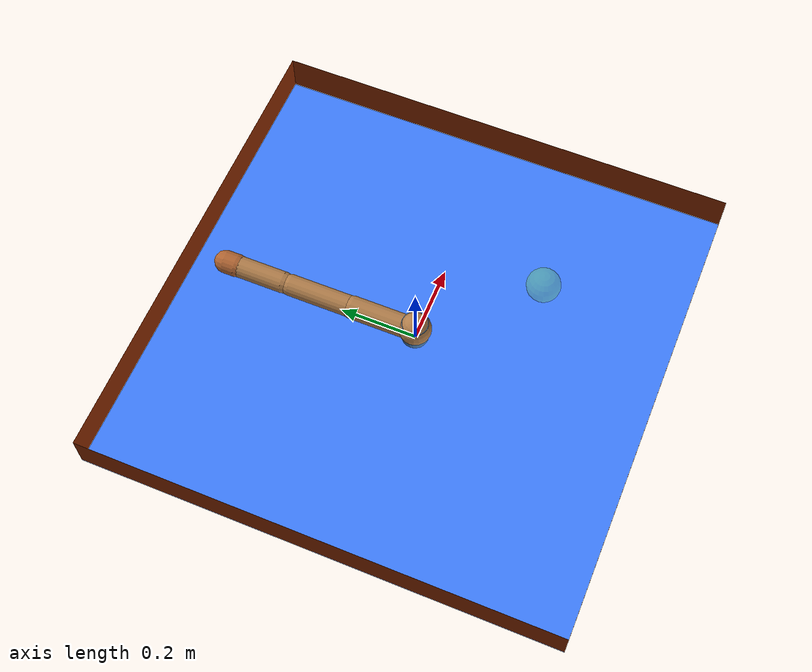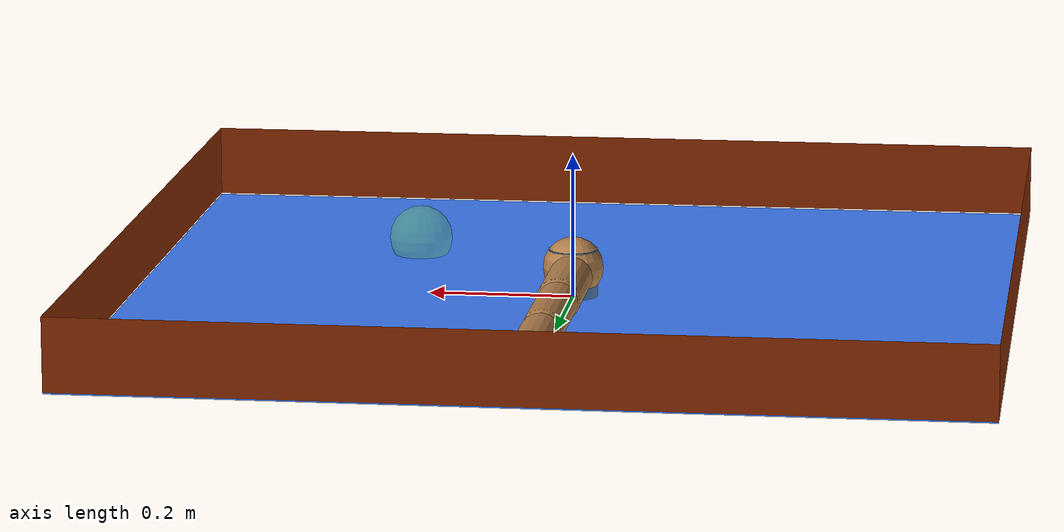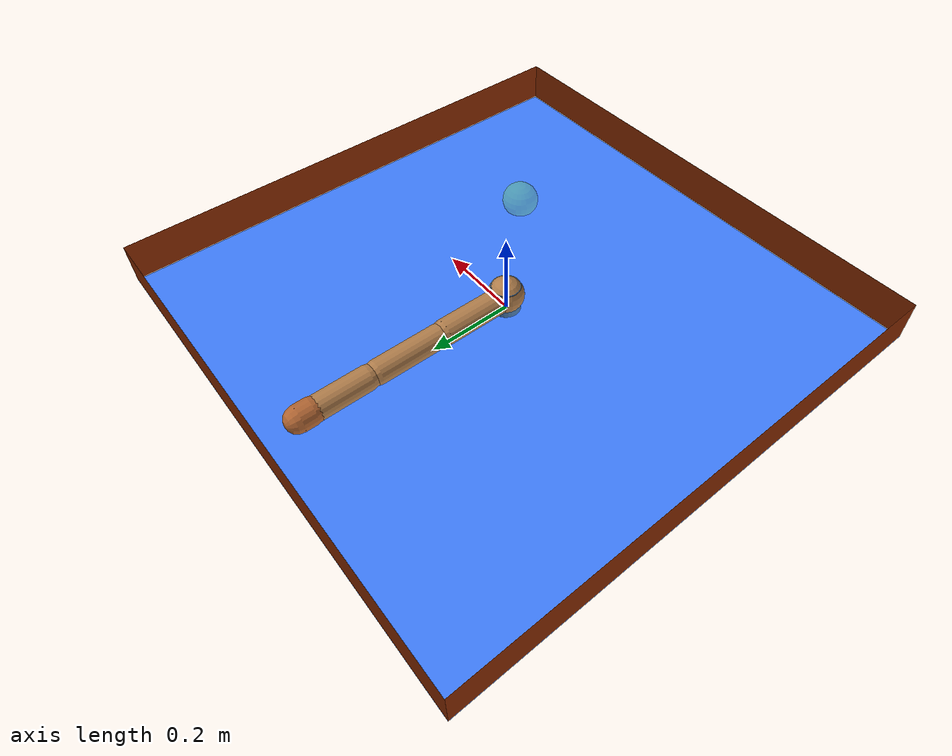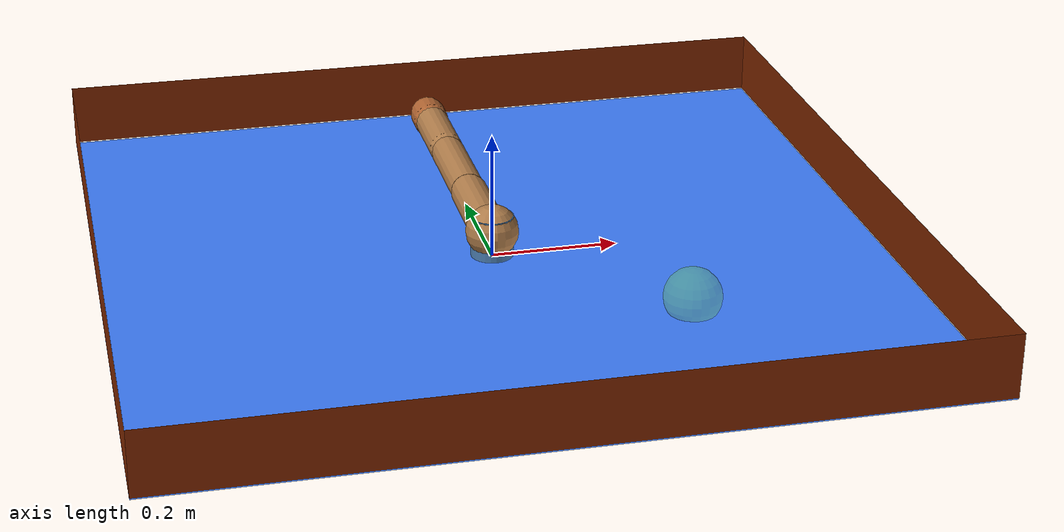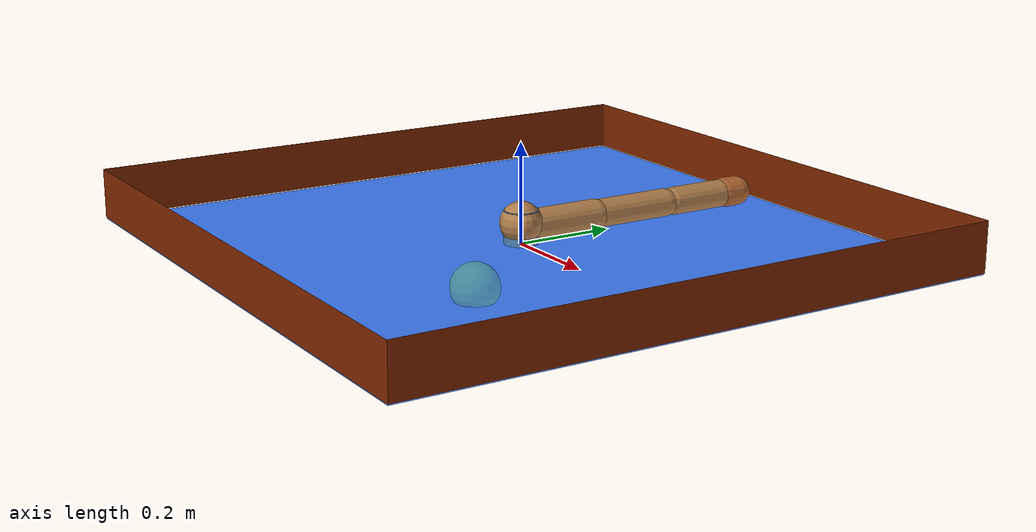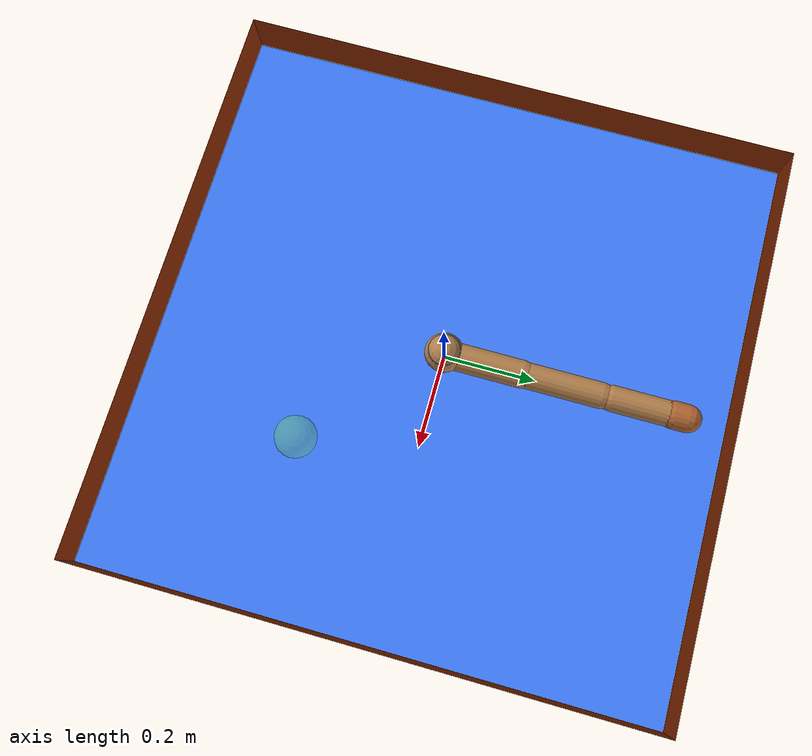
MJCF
<mujoco model="planar point mass">
    <visual>
        <quality shadowsize="2048" />
        <headlight ambient="0.4 0.4 0.4" diffuse="0.8 0.8 0.8" specular="0.1 0.1 0.1" />
    </visual>

    <default class="main">
        <general ctrllimited="true" ctrlrange="-1 1" />
    </default>

    <default class="object">
        <geom material="self"/>
    </default>

    <asset>
        <texture type="skybox" name="skybox" builtin="gradient" mark="random" rgb1="0.4 0.6 0.8" rgb2="0 0 0" markrgb="1 1 1" width="800" height="4800" />
        <texture type="2d" name="grid" builtin="checker" mark="edge" rgb1="0.1 0.2 0.3" rgb2="0.2 0.3 0.4" markrgb="0.2 0.3 0.4" width="300" height="300" />
        <material name="grid" texture="grid" texuniform="true" reflectance="0.2" />
        <material name="self" rgba="0.7 0.5 0.3 1" />
        <material name="self_default" rgba="0.7 0.5 0.3 1" />
        <material name="self_highlight" rgba="0 0.5 0.3 1" />
        <material name="effector" rgba="0.7 0.4 0.2 1" />
        <material name="effector_default" rgba="0.7 0.4 0.2 1" />
        <material name="effector_highlight" rgba="0 0.5 0.3 1" />
        <material name="decoration" rgba="0.3 0.5 0.7 1" />
        <material name="eye" rgba="0 0.2 1 1" />
        <material name="target" rgba="0.6 0.3 0.3 1" />
        <material name="target_default" rgba="0.6 0.3 0.3 1" />
        <material name="target_highlight" rgba="0.6 0.3 0.3 0.4" />
    </asset>

    <option timestep="0.01"> </option>
    <default class="finger">
        <site type="ellipsoid" size=".025 .03 .025" rgba=".5 .5 .5 .3" group="3"/>
    </default>

    <worldbody>
        <geom name="ground" size="0.61 0.61 0.1" pos="-0.0 0 0.0" type="plane" rgba="0.25 0.5 1 1"/>
        <geom name="wall_x" size="0.05 0.61 0.02" pos="-0.61 0 0.05" quat="0.707107 0 0.707107 0" type="plane" rgba="0.5 0.15 0 1"/>
        <geom name="wall_y" size="0.61 0.05 0.02" pos="0 -0.61 0.05" quat="0.707107 -0.707107 0 0" type="plane" rgba="0.5 0.15 0 1"/>
        <geom name="wall_neg_x" size="0.05 0.61 0.02" pos="0.61 0 0.05" quat="0.707107 0 -0.707107 0" type="plane" rgba="0.5 0.15 0 1"/>
        <geom name="wall_neg_y" size="0.61 0.05 0.02" pos="0 0.61 0.05" quat="0.707107 0.707107 0 0" type="plane" rgba="0.5 0.15 0 1"/>
        <camera name="fixed" pos="0 0 0.75" />
        <light name="light" pos="0 0 1" dir="0 0 -1" />

        <body name ="finger" pos="0 0 0.035" quat="0.707107 0.707107 0 0">
            <geom name="proximal_decoration" type="cylinder" fromto="0 -.033 0 0 .033 0" size=".034" material="decoration" />
            <joint name="proximal" range="-150 -80" axis="0 -1 0" ref="-90" damping="0.05" limited="false" />
            <geom name="proximal" type="capsule" material="self" size=".03" fromto="0 0 0 0 0 -.17"/>
            <body name="distal" pos="0 0 -.18" childclass="finger">
                <joint name="distal" range="-50 50" axis="0 -1 0" damping="0.05" limited="false"/>
                <geom name="distal" type="capsule" size=".028" material="self" fromto="0 0 0 0 0 -.16"/>/>
                <body name="distal2" pos="0 0 -.18" childclass="finger">
                    <joint name="distal2" range="-50 50" axis="0 -1 0" damping="0.05" limited="false"/>
                    <geom name="distal2" type="capsule" size=".028" material="self" fromto="0 0 0 0 0 -.16"/>
                    <geom name="fingertip2" type="capsule" size=".03" material="effector" fromto="0 0 -.13 0 0 -.161"/>
                    <site name="touchtop2" pos=".01 0 -.17"/>
                    <site name="touchbottom2" pos="-.01 0 -.17"/>
                </body>
            </body>
        </body>

        <body name="pointmass" pos="-.0 .0 .042">
            <camera name="cam0" pos="0 -0.3 0.3" xyaxes="1 0 0 0 0.7 0.7"/>
            <joint name="root_x" type="slide"  pos="0 0 0" axis="1 0 0" damping="3" frictionloss=".01"/>
            <joint name="root_y" type="slide"  pos="0 0 0" axis="0 1 0" damping="3" frictionloss=".01"/>
            <geom name="pointmass" type="sphere" size=".042" material="self" mass=".6" condim="4"  group="2" solimp="0.9 0.95 0.001" solref="0.02 1"/>
        </body>

        <geom name="target" pos="0.25 -0.25 0.022" material="target" type="sphere" rgba="0.5 1 0 0.25"  size=".045" contype="0" conaffinity="0"/>
    </worldbody>

    <tendon>
        <fixed name="t1">
            <joint joint="root_x" coef="1"/>
            <joint joint="root_y" coef="0"/>
        </fixed>
        <fixed name="t2">
            <joint joint="root_x" coef="0"/>
            <joint joint="root_y" coef="1"/>
        </fixed>
    </tendon>

    <actuator>
        <general name="proximal" joint="proximal" gear="1 0 0 0 0 0" />
        <general name="distal" joint="distal" gear="1.25 0 0 0 0 0" />
        <general name="distal2" joint="distal2" gear="1.5 0 0 0 0 0" />
    </actuator>

    <sensor>
        <framepos name="proximal_frame" objtype="body" objname="pointmass"/>
    </sensor>

    <contact>
        <exclude body1="pointmass" body2="world"/>
        <exclude body1="distal" body2="world"/>
        <exclude body1="distal2" body2="world"/>
        <exclude body1="finger" body2="world"/>
    </contact>

</mujoco>
